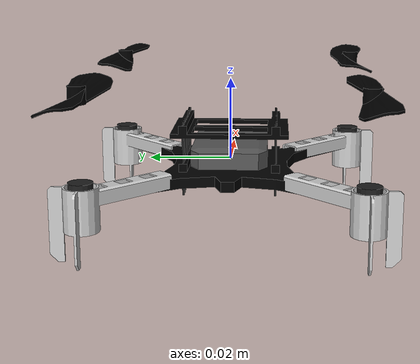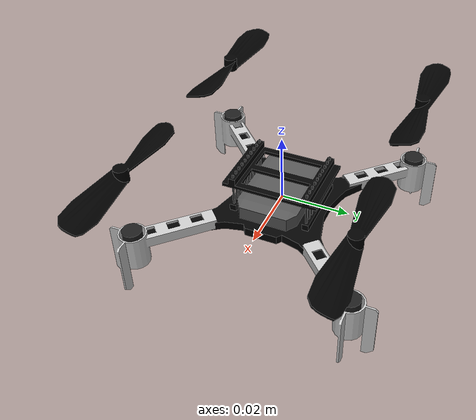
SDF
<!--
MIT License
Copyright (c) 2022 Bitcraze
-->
<?xml version="1.0"?>

<sdf version="1.8">
  <model name="crazyflie">
    <pose>0 0 0.0 0 0 3.14</pose>
    <link name="crazyflie/body">
      <inertial>
        <pose>0 0 0 0 0 0</pose>
        <mass>0.025</mass>
        <inertia>
          <ixx>0.000016572</ixx>
          <ixy>0.00</ixy>
          <ixz>0.00</ixz>
          <iyy>0.000016656</iyy>
          <iyz>0.00000</iyz>
          <izz>0.000029262</izz>
        </inertia>
      </inertial>
      <collision name="crazyflie/body_collision">
        <pose>0 0 0 0 0 0</pose>
        <geometry>
          <box>
            <size>0.10 0.10 0.03</size>
          </box>
        </geometry>
      </collision>
      <visual name="crazyflie/body_visual">
        <pose>0 0 0 0 0 0</pose>
        <geometry>
          <mesh>
            <scale>1 1 1</scale>
            <uri>../../../meshes/collada_files/cf2_assembly.dae</uri>
          </mesh>
        </geometry>
      </visual>
      <sensor name="imu_sensor" type="imu">
        <pose degrees="true">0 0 0 180 0 0</pose>
        <always_on>1</always_on>
        <update_rate>1000.0</update_rate>
      </sensor>
    </link>
    <link name="crazyflie/m1_prop">
      <pose>0.031 -0.031 0.021 0 0 0</pose>
      <inertial>
        <pose>0 0 0 0 0 0</pose>
        <mass>0.0008</mass>
        <inertia>
          <ixx>8.33333E-09</ixx>
          <iyy>1.08333E-07</iyy>
          <izz>1.13333E-07</izz>
          <ixy>0</ixy>
          <ixz>0</ixz>
          <iyz>0</iyz>
        </inertia>
      </inertial>
      <collision name="collision">
        <pose>0 0 0 0 0 0</pose>
        <geometry>
          <mesh>
            <scale>1 1 1</scale>
            <uri>../../../meshes/collada_files/ccw_prop.dae</uri>
          </mesh>
        </geometry>
      </collision>
      <visual name="crazyflie/m1_visual">
        <pose>0 0 0 0 0 0</pose>
        <geometry>
          <mesh>
            <scale>1 1 1</scale>
            <uri>../../../meshes/collada_files/ccw_prop.dae</uri>
          </mesh>
        </geometry>
      </visual>
    </link>
    <link name="crazyflie/m2_prop">
      <pose>-0.031 0.031 0.021 0 0 0</pose>
      <inertial>
        <pose>0 0 0 0 -0 0</pose>
        <mass>0.0008</mass>
        <inertia>
          <ixx>8.33333E-09</ixx>
          <iyy>1.08333E-07</iyy>
          <izz>1.13333E-07</izz>
          <ixy>0</ixy>
          <ixz>0</ixz>
          <iyz>0</iyz>
        </inertia>
      </inertial>
      <collision name="collision">
        <pose>0 0 0 0 0 0</pose>
        <geometry>
          <mesh>
            <scale>1 1 1</scale>
            <uri>../../../meshes/collada_files/cw_prop.dae</uri>
          </mesh>
        </geometry>
      </collision>
      <visual name="crazyflie/m2_visual">
        <pose>0 0 0 0 0 0</pose>
        <geometry>
          <mesh>
            <scale>1 1 1</scale>
            <uri>../../../meshes/collada_files/cw_prop.dae</uri>
          </mesh>
        </geometry>
      </visual>
    </link>
    <link name="crazyflie/m3_prop">
      <pose>0.031 0.031 0.021 0 0 0</pose>
      <inertial>
        <pose>0 0 0 0 0 0</pose>
        <mass>0.0008</mass>
        <inertia>
          <ixx>8.33333E-09</ixx>
          <iyy>1.08333E-07</iyy>
          <izz>1.13333E-07</izz>
          <ixy>0</ixy>
          <ixz>0</ixz>
          <iyz>0</iyz>
        </inertia>
      </inertial>
      <collision name="collision">
        <pose>0 0 0 0 0 0</pose>
        <geometry>
          <mesh>
            <scale>1 1 1</scale>
            <uri>../../../meshes/collada_files/ccw_prop.dae</uri>
          </mesh>
        </geometry>
      </collision>
      <visual name="crazyflie/m3_visual">
        <pose>0 0 0 0 0 0</pose>
        <geometry>
          <mesh>
            <scale>1 1 1</scale>
            <uri>../../../meshes/collada_files/ccw_prop.dae</uri>
          </mesh>
        </geometry>
      </visual>
    </link>
    <link name="crazyflie/m4_prop">
      <pose>-0.031 -0.031 0.021 0 0 0</pose>
      <inertial>
        <pose>0 0 0 0 0 0</pose>
        <mass>0.0008</mass>
        <inertia>
          <ixx>8.33333E-09</ixx>
          <iyy>1.08333E-07</iyy>
          <izz>1.13333E-07</izz>
          <ixy>0</ixy>
          <ixz>0</ixz>
          <iyz>0</iyz>
        </inertia>
      </inertial>
      <collision name="collision">
        <pose>0 0 0 0 0 0</pose>
        <geometry>
          <mesh>
            <scale>1 1 1</scale>
            <uri>../../../meshes/collada_files/cw_prop.dae</uri>
          </mesh>
        </geometry>
      </collision>
      <visual name="crazyflie/m4_visual">
        <pose>0 0 0 0 0 0</pose>
        <geometry>
          <mesh>
            <scale>1 1 1</scale>
            <uri>../../../meshes/collada_files/cw_prop.dae</uri>
          </mesh>
        </geometry>
      </visual>
    </link>
    <joint name="crazyflie/m1_joint" type="revolute">
      <child>crazyflie/m1_prop</child>
      <parent>crazyflie/body</parent>
      <axis>
        <xyz>0 0 1</xyz>
        <limit>
          <lower>-1e+16</lower>
          <upper>1e+16</upper>
        </limit>
        <dynamics>
          <damping>0.004</damping>
        </dynamics>
      </axis>
    </joint>
    <joint name="crazyflie/m2_joint" type="revolute">
      <child>crazyflie/m2_prop</child>
      <parent>crazyflie/body</parent>
      <axis>
        <xyz>0 0 1</xyz>
        <limit>
          <lower>-1e+16</lower>
          <upper>1e+16</upper>
        </limit>
        <dynamics>
          <damping>0.004</damping>
        </dynamics>
      </axis>
    </joint>
    <joint name="crazyflie/m3_joint" type="revolute">
      <child>crazyflie/m3_prop</child>
      <parent>crazyflie/body</parent>
      <axis>
        <xyz>0 0 1</xyz>
        <limit>
          <lower>-1e+16</lower>
          <upper>1e+16</upper>
        </limit>
        <dynamics>
          <damping>0.004</damping>
        </dynamics>
      </axis>
    </joint>
    <joint name="crazyflie/m4_joint" type="revolute">
      <child>crazyflie/m4_prop</child>
      <parent>crazyflie/body</parent>
      <axis>
        <xyz>0 0 1</xyz>
        <limit>
          <lower>-1e+16</lower>
          <upper>1e+16</upper>
        </limit>
        <dynamics>
          <damping>0.004</damping>
        </dynamics>
      </axis>
    </joint>
    <plugin
      filename="gz-sim-multicopter-motor-model-system"
      name="gz::sim::systems::MulticopterMotorModel">
      <robotNamespace>crazyflie</robotNamespace>
      <jointName>crazyflie/m1_joint</jointName>
      <linkName>crazyflie/m1_prop</linkName>
      <turningDirection>ccw</turningDirection>
      <timeConstantUp>0.0125</timeConstantUp>
      <timeConstantDown>0.025</timeConstantDown>
      <maxRotVelocity>2618</maxRotVelocity>
      <motorConstant>1.28192e-08</motorConstant>
      <momentConstant>0.016</momentConstant>
      <commandSubTopic>gazebo/command/motor_speed</commandSubTopic>
      <actuator_number>0</actuator_number>
      <rotorDragCoefficient>8.06428e-05</rotorDragCoefficient>
      <rollingMomentCoefficient>1.0e-6</rollingMomentCoefficient>
      <motorSpeedPubTopic>motor_speed/0</motorSpeedPubTopic>
      <rotorVelocitySlowdownSim>10</rotorVelocitySlowdownSim>
      <motorType>velocity</motorType>
    </plugin>
    <plugin
      filename="gz-sim-multicopter-motor-model-system"
      name="gz::sim::systems::MulticopterMotorModel">
      <robotNamespace>crazyflie</robotNamespace>
      <jointName>crazyflie/m2_joint</jointName>
      <linkName>crazyflie/m2_prop</linkName>
      <turningDirection>ccw</turningDirection>
      <timeConstantUp>0.0125</timeConstantUp>
      <timeConstantDown>0.025</timeConstantDown>
      <maxRotVelocity>2618</maxRotVelocity>
      <motorConstant>1.28192e-08</motorConstant>
      <momentConstant>0.016</momentConstant>
      <commandSubTopic>gazebo/command/motor_speed</commandSubTopic>
      <actuator_number>1</actuator_number>
      <rotorDragCoefficient>8.06428e-05</rotorDragCoefficient>
      <rollingMomentCoefficient>1.0e-6</rollingMomentCoefficient>
      <motorSpeedPubTopic>motor_speed/1</motorSpeedPubTopic>
      <rotorVelocitySlowdownSim>10</rotorVelocitySlowdownSim>
      <motorType>velocity</motorType>
    </plugin>
    <plugin
      filename="gz-sim-multicopter-motor-model-system"
      name="gz::sim::systems::MulticopterMotorModel">
      <robotNamespace>crazyflie</robotNamespace>
      <jointName>crazyflie/m3_joint</jointName>
      <linkName>crazyflie/m3_prop</linkName>
      <turningDirection>cw</turningDirection>
      <timeConstantUp>0.0125</timeConstantUp>
      <timeConstantDown>0.025</timeConstantDown>
      <maxRotVelocity>2618</maxRotVelocity>
      <motorConstant>1.28192e-08</motorConstant>
      <momentConstant>0.016</momentConstant>
      <commandSubTopic>gazebo/command/motor_speed</commandSubTopic>
      <actuator_number>2</actuator_number>
      <rotorDragCoefficient>8.06428e-05</rotorDragCoefficient>
      <rollingMomentCoefficient>1.0e-6</rollingMomentCoefficient>
      <motorSpeedPubTopic>motor_speed/2</motorSpeedPubTopic>
      <rotorVelocitySlowdownSim>10</rotorVelocitySlowdownSim>
      <motorType>velocity</motorType>
    </plugin>
    <plugin
      filename="gz-sim-multicopter-motor-model-system"
      name="gz::sim::systems::MulticopterMotorModel">
      <robotNamespace>crazyflie</robotNamespace>
      <jointName>crazyflie/m4_joint</jointName>
      <linkName>crazyflie/m4_prop</linkName>
      <turningDirection>cw</turningDirection>
      <timeConstantUp>0.0125</timeConstantUp>
      <timeConstantDown>0.025</timeConstantDown>
      <maxRotVelocity>2618</maxRotVelocity>
      <motorConstant>1.28192e-08</motorConstant>
      <momentConstant>0.016</momentConstant>
      <commandSubTopic>gazebo/command/motor_speed</commandSubTopic>
      <actuator_number>3</actuator_number>
      <rotorDragCoefficient>8.06428e-05</rotorDragCoefficient>
      <rollingMomentCoefficient>1.0e-6</rollingMomentCoefficient>
      <motorSpeedPubTopic>motor_speed/3</motorSpeedPubTopic>
      <rotorVelocitySlowdownSim>10</rotorVelocitySlowdownSim>
      <motorType>velocity</motorType>
    </plugin>
    <plugin
      filename="gz-sim-odometry-publisher-system"
      name="gz::sim::systems::OdometryPublisher">
      <dimensions>3</dimensions>
    </plugin>
  </model>
</sdf>
